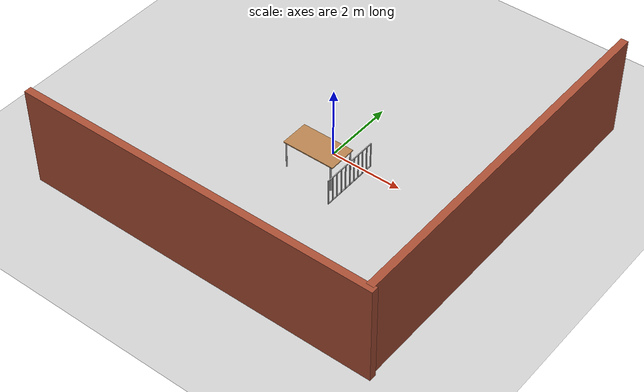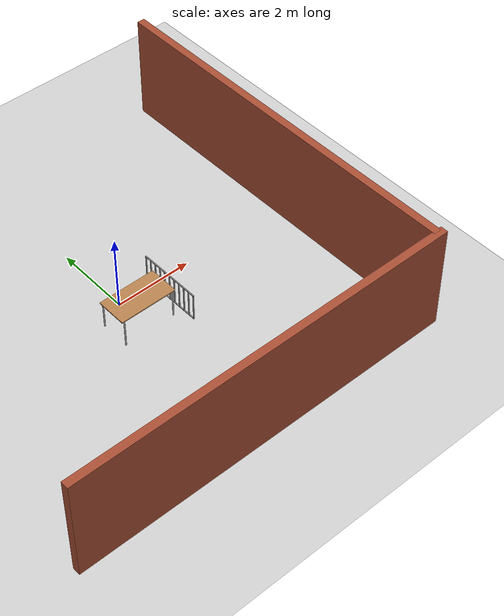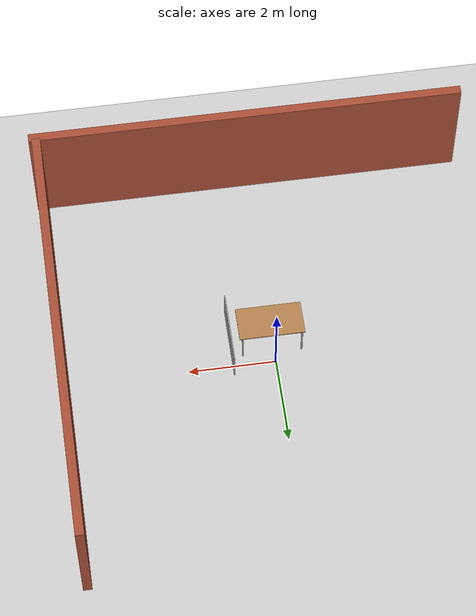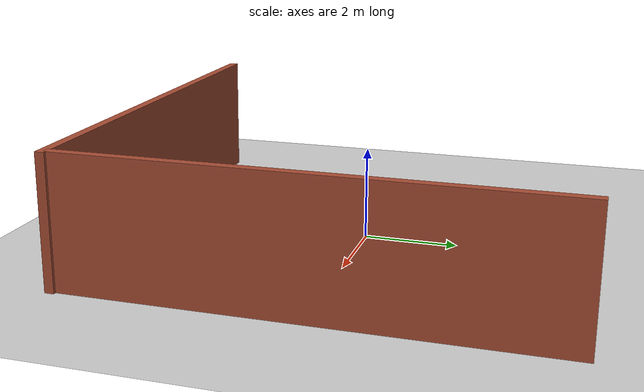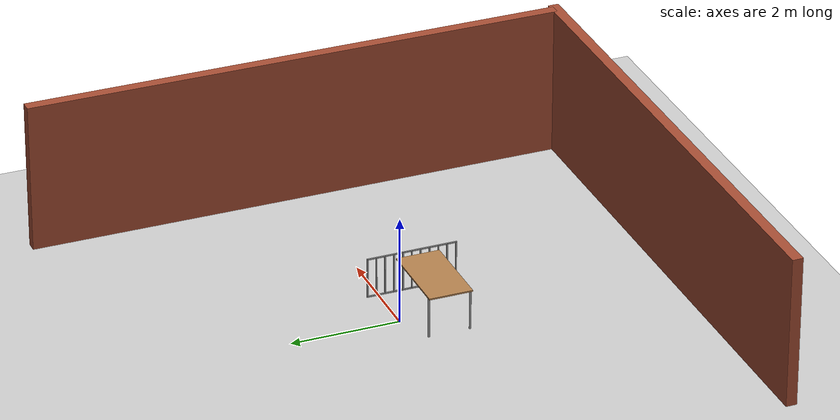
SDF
<sdf version="1.7">
 <world name="ufba_modificado">
  <model name="ground_plane">
   <static>1</static>
   <link name="link">
    <collision name="collision">
     <geometry><plane><normal>0 0 1</normal><size>100 100</size></plane></geometry>
     <surface>
      <contact><collide_bitmask>65535</collide_bitmask></contact>
      <friction><ode><mu>100</mu><mu2>50</mu2></ode></friction>
     </surface>
    </collision>
    <visual name="visual">
     <cast_shadows>0</cast_shadows>
     <geometry><plane><normal>0 0 1</normal><size>100 100</size></plane></geometry>
     <material>
      <script><uri>file://media/materials/scripts/gazebo.material</uri><name>Gazebo/Grey</name></script>
     </material>
    </visual>
   </link>
  </model>
  <model name="parede_sul">
   <static>1</static>
   <pose>0 -5 1.4 0 -0 0</pose>
   <link name="link">
    <collision name="collision"><geometry><box><size>10 0.2 2.8</size></box></geometry></collision>
    <visual name="visual">
     <geometry><box><size>10 0.2 2.8</size></box></geometry>
     <material>
      <script><uri>file://media/materials/scripts/gazebo.material</uri><name>Gazebo/Bricks</name></script>
     </material>
    </visual>
   </link>
  </model>
  <model name="parede_leste">
   <static>1</static>
   <pose>4.83525 0.034454 1.4 0 -0 1.5707</pose>
   <link name="link">
    <collision name="collision"><geometry><box><size>10 0.2 2.8</size></box></geometry></collision>
    <visual name="visual">
     <geometry><box><size>10 0.2 2.8</size></box></geometry>
     <material>
      <script><uri>file://media/materials/scripts/gazebo.material</uri><name>Gazebo/Bricks</name></script>
     </material>
    </visual>
   </link>
  </model>
  <model name="mesa_escritorio_clone_clone">
   <static>1</static>
   <link name="link">
    <collision name="surface">
     <pose>0 0 1 0 -0 0</pose>
     <geometry><box><size>1.5 0.8 0.03</size></box></geometry>
     <surface><friction><ode><mu>0.6</mu><mu2>0.6</mu2></ode></friction></surface>
    </collision>
    <visual name="visual1">
     <pose>0 0 1 0 -0 0</pose>
     <geometry><box><size>1.5 0.8 0.03</size></box></geometry>
     <material>
      <script><uri>file://media/materials/scripts/gazebo.material</uri><name>Gazebo/Wood</name></script>
     </material>
    </visual>
    <collision name="front_left_leg">
     <pose>0.68 0.38 0.5 0 -0 0</pose>
     <geometry><cylinder><radius>0.02</radius><length>1</length></cylinder></geometry>
    </collision>
    <visual name="front_left_leg">
     <pose>0.68 0.38 0.5 0 -0 0</pose>
     <geometry><cylinder><radius>0.02</radius><length>1</length></cylinder></geometry>
     <material>
      <script><uri>file://media/materials/scripts/gazebo.material</uri><name>Gazebo/Grey</name></script>
     </material>
    </visual>
    <collision name="front_right_leg">
     <pose>0.68 -0.38 0.5 0 -0 0</pose>
     <geometry><cylinder><radius>0.02</radius><length>1</length></cylinder></geometry>
    </collision>
    <visual name="front_right_leg">
     <pose>0.68 -0.38 0.5 0 -0 0</pose>
     <geometry><cylinder><radius>0.02</radius><length>1</length></cylinder></geometry>
     <material>
      <script><uri>file://media/materials/scripts/gazebo.material</uri><name>Gazebo/Grey</name></script>
     </material>
    </visual>
    <collision name="back_right_leg">
     <pose>-0.68 -0.38 0.5 0 -0 0</pose>
     <geometry><cylinder><radius>0.02</radius><length>1</length></cylinder></geometry>
    </collision>
    <visual name="back_right_leg">
     <pose>-0.68 -0.38 0.5 0 -0 0</pose>
     <geometry><cylinder><radius>0.02</radius><length>1</length></cylinder></geometry>
     <material>
      <script><uri>file://media/materials/scripts/gazebo.material</uri><name>Gazebo/Grey</name></script>
     </material>
    </visual>
    <collision name="back_left_leg">
     <pose>-0.68 0.38 0.5 0 -0 0</pose>
     <geometry><cylinder><radius>0.02</radius><length>1</length></cylinder></geometry>
    </collision>
    <visual name="back_left_leg">
     <pose>-0.68 0.38 0.5 0 -0 0</pose>
     <geometry><cylinder><radius>0.02</radius><length>1</length></cylinder></geometry>
     <material>
      <script><uri>file://media/materials/scripts/gazebo.material</uri><name>Gazebo/Grey</name></script>
     </material>
    </visual>
   </link>
   <pose>0.045684 -0.657499 -0.24392 0 -0 0</pose>
  </model>
  <model name="pet_gate_wide_clone">
   <static>1</static>
   <link name="link">
    <collision name="bar1_collision">
     <pose>0 0 0.381 0 -0 0</pose>
     <geometry><box><size>0.0254 0.0254 0.7366</size></box></geometry>
    </collision>
    <visual name="bar1_visual">
     <pose>0 0 0.381 0 -0 0</pose>
     <geometry><box><size>0.0254 0.0254 0.7366</size></box></geometry>
     <material>
      <script><uri>file://media/materials/scripts/gazebo.material</uri><name>Gazebo/Grey</name></script>
     </material>
    </visual>
    <collision name="bar2_collision">
     <pose>0.1651 0 0.381 0 -0 0</pose>
     <geometry><box><size>0.0254 0.0254 0.7366</size></box></geometry>
    </collision>
    <visual name="bar2_visual">
     <pose>0.1651 0 0.381 0 -0 0</pose>
     <geometry><box><size>0.0254 0.0254 0.7366</size></box></geometry>
     <material>
      <script><uri>file://media/materials/scripts/gazebo.material</uri><name>Gazebo/Grey</name></script>
     </material>
    </visual>
    <collision name="bar3_collision">
     <pose>0.3302 0 0.381 0 -0 0</pose>
     <geometry><box><size>0.0254 0.0254 0.7366</size></box></geometry>
    </collision>
    <visual name="bar3_visual">
     <pose>0.3302 0 0.381 0 -0 0</pose>
     <geometry><box><size>0.0254 0.0254 0.7366</size></box></geometry>
     <material>
      <script><uri>file://media/materials/scripts/gazebo.material</uri><name>Gazebo/Grey</name></script>
     </material>
    </visual>
    <collision name="bar4_collision">
     <pose>0.4953 0 0.381 0 -0 0</pose>
     <geometry><box><size>0.0254 0.0254 0.7366</size></box></geometry>
    </collision>
    <visual name="bar4_visual">
     <pose>0.4953 0 0.381 0 -0 0</pose>
     <geometry><box><size>0.0254 0.0254 0.7366</size></box></geometry>
     <material>
      <script><uri>file://media/materials/scripts/gazebo.material</uri><name>Gazebo/Grey</name></script>
     </material>
    </visual>
    <collision name="bar5_collision">
     <pose>0.6604 0 0.381 0 -0 0</pose>
     <geometry><box><size>0.0254 0.0254 0.7366</size></box></geometry>
    </collision>
    <visual name="bar5_visual">
     <pose>0.6604 0 0.381 0 -0 0</pose>
     <geometry><box><size>0.0254 0.0254 0.7366</size></box></geometry>
     <material>
      <script><uri>file://media/materials/scripts/gazebo.material</uri><name>Gazebo/Grey</name></script>
     </material>
    </visual>
    <collision name="bar6_collision">
     <pose>0.8255 0 0.381 0 -0 0</pose>
     <geometry><box><size>0.0254 0.0254 0.7366</size></box></geometry>
    </collision>
    <visual name="bar6_visual">
     <pose>0.8255 0 0.381 0 -0 0</pose>
     <geometry><box><size>0.0254 0.0254 0.7366</size></box></geometry>
     <material>
      <script><uri>file://media/materials/scripts/gazebo.material</uri><name>Gazebo/Grey</name></script>
     </material>
    </visual>
    <collision name="bar7_collision">
     <pose>0.9906 0 0.381 0 -0 0</pose>
     <geometry><box><size>0.0254 0.0254 0.7366</size></box></geometry>
    </collision>
    <visual name="bar7_visual">
     <pose>0.9906 0 0.381 0 -0 0</pose>
     <geometry><box><size>0.0254 0.0254 0.7366</size></box></geometry>
     <material>
      <script><uri>file://media/materials/scripts/gazebo.material</uri><name>Gazebo/Grey</name></script>
     </material>
    </visual>
    <collision name="bar8_collision">
     <pose>1.1557 0 0.381 0 -0 0</pose>
     <geometry><box><size>0.0254 0.0254 0.7366</size></box></geometry>
    </collision>
    <visual name="bar8_visual">
     <pose>1.1557 0 0.381 0 -0 0</pose>
     <geometry><box><size>0.0254 0.0254 0.7366</size></box></geometry>
     <material>
      <script><uri>file://media/materials/scripts/gazebo.material</uri><name>Gazebo/Grey</name></script>
     </material>
    </visual>
    <collision name="bar9_collision">
     <pose>1.3208 0 0.381 0 -0 0</pose>
     <geometry><box><size>0.0254 0.0254 0.7366</size></box></geometry>
    </collision>
    <visual name="bar9_visual">
     <pose>1.3208 0 0.381 0 -0 0</pose>
     <geometry><box><size>0.0254 0.0254 0.7366</size></box></geometry>
     <material>
      <script><uri>file://media/materials/scripts/gazebo.material</uri><name>Gazebo/Grey</name></script>
     </material>
    </visual>
    <collision name="bar10_collision">
     <pose>1.4859 0 0.381 0 -0 0</pose>
     <geometry><box><size>0.0254 0.0254 0.7366</size></box></geometry>
    </collision>
    <visual name="bar10_visual">
     <pose>1.4859 0 0.381 0 -0 0</pose>
     <geometry><box><size>0.0254 0.0254 0.7366</size></box></geometry>
     <material>
      <script><uri>file://media/materials/scripts/gazebo.material</uri><name>Gazebo/Grey</name></script>
     </material>
    </visual>
    <collision name="bar11_collision">
     <pose>1.651 0 0.381 0 -0 0</pose>
     <geometry><box><size>0.0254 0.0254 0.7366</size></box></geometry>
    </collision>
    <visual name="bar11_visual">
     <pose>1.651 0 0.381 0 -0 0</pose>
     <geometry><box><size>0.0254 0.0254 0.7366</size></box></geometry>
     <material>
      <script><uri>file://media/materials/scripts/gazebo.material</uri><name>Gazebo/Grey</name></script>
     </material>
    </visual>
    <collision name="top_rail_collision">
     <pose>0.8255 0 0.7493 0 -0 0</pose>
     <geometry><box><size>1.6764 0.0254 0.0254</size></box></geometry>
    </collision>
    <visual name="top_rail_visual">
     <pose>0.8255 0 0.7493 0 -0 0</pose>
     <geometry><box><size>1.6764 0.0254 0.0254</size></box></geometry>
     <material>
      <script><uri>file://media/materials/scripts/gazebo.material</uri><name>Gazebo/Grey</name></script>
     </material>
    </visual>
    <collision name="bottom_rail_collision">
     <pose>0.8255 0 0.0127 0 -0 0</pose>
     <geometry><box><size>1.6764 0.0254 0.0254</size></box></geometry>
    </collision>
    <visual name="bottom_rail_visual">
     <pose>0.8255 0 0.0127 0 -0 0</pose>
     <geometry><box><size>1.6764 0.0254 0.0254</size></box></geometry>
     <material>
      <script><uri>file://media/materials/scripts/gazebo.material</uri><name>Gazebo/Grey</name></script>
     </material>
    </visual>
   </link>
   <pose>0.983608 -1.44668 0 0 -0 1.57357</pose>
  </model>
 </world>
</sdf>
